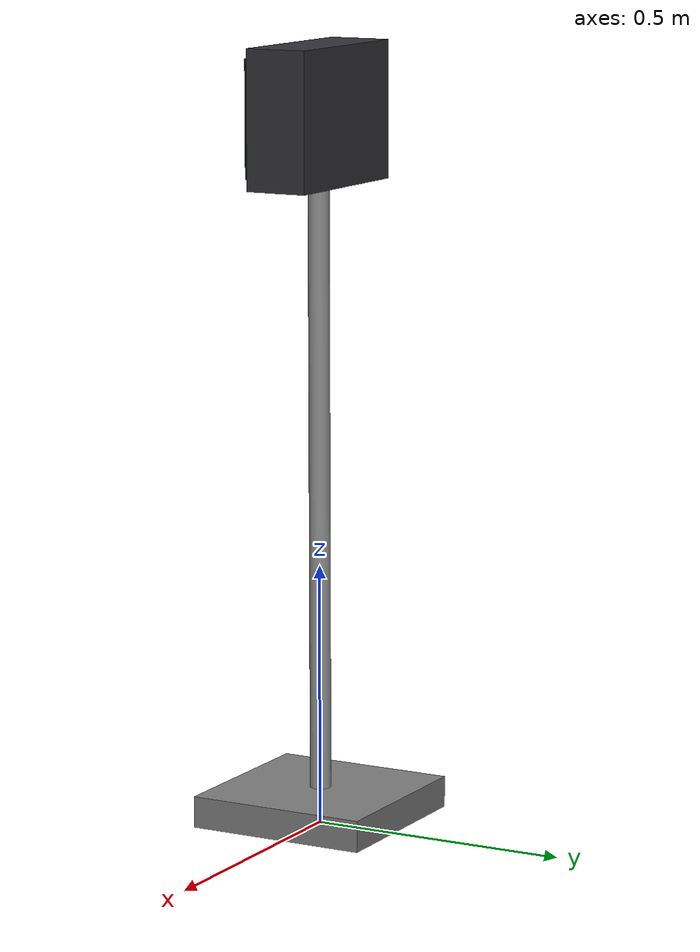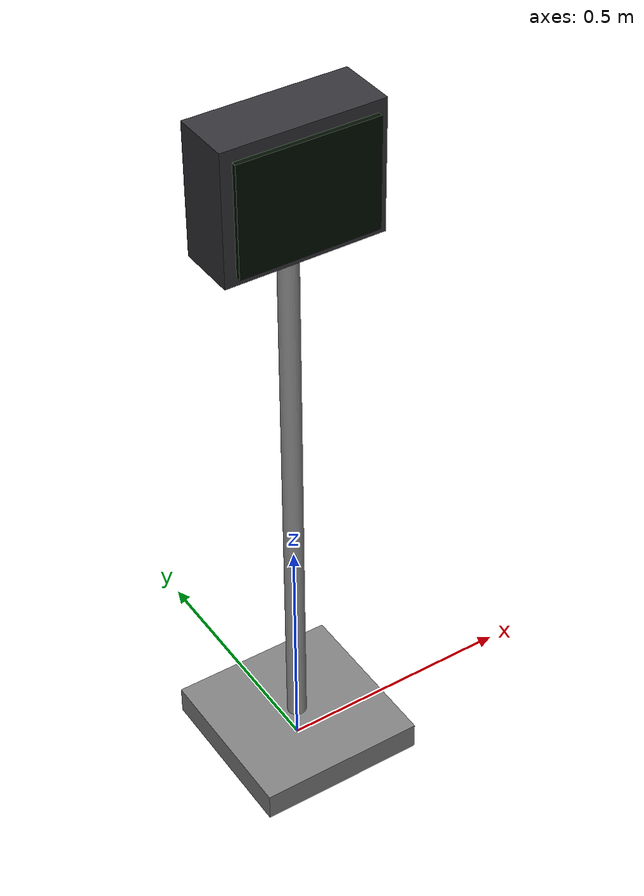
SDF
<?xml version="1.0"?>
<sdf version="1.6">
  <model name="patient_monitor">
    <static>true</static>
    <!-- Pole -->
    <link name="pole">
      <pose>0 0 0.65 0 0 0</pose>
      <collision name="c"><geometry><cylinder><radius>0.02</radius><length>1.3</length></cylinder></geometry></collision>
      <visual name="v">
        <geometry><cylinder><radius>0.02</radius><length>1.3</length></cylinder></geometry>
        <material><ambient>0.6 0.6 0.6 1</ambient><diffuse>0.6 0.6 0.6 1</diffuse></material>
      </visual>
    </link>
    <!-- Monitor box -->
    <link name="monitor_body">
      <pose>0 0 1.35 0 0 0</pose>
      <collision name="c"><geometry><box><size>0.32 0.12 0.26</size></box></geometry></collision>
      <visual name="v">
        <geometry><box><size>0.32 0.12 0.26</size></box></geometry>
        <material><ambient>0.2 0.2 0.22 1</ambient><diffuse>0.2 0.2 0.22 1</diffuse></material>
      </visual>
    </link>
    <!-- Screen (green on dark) -->
    <link name="screen">
      <pose>0 -0.07 1.35 0 0 0</pose>
      <visual name="v">
        <geometry><box><size>0.28 0.01 0.22</size></box></geometry>
        <material><ambient>0 0.05 0 1</ambient><diffuse>0 0.05 0 1</diffuse>
          <emissive>0 0.6 0.2 1</emissive></material>
      </visual>
    </link>
    <!-- Base -->
    <link name="base">
      <pose>0 0 0.04 0 0 0</pose>
      <collision name="c"><geometry><box><size>0.35 0.35 0.06</size></box></geometry></collision>
      <visual name="v">
        <geometry><box><size>0.35 0.35 0.06</size></box></geometry>
        <material><ambient>0.5 0.5 0.5 1</ambient><diffuse>0.5 0.5 0.5 1</diffuse></material>
      </visual>
    </link>
  </model>
</sdf>
